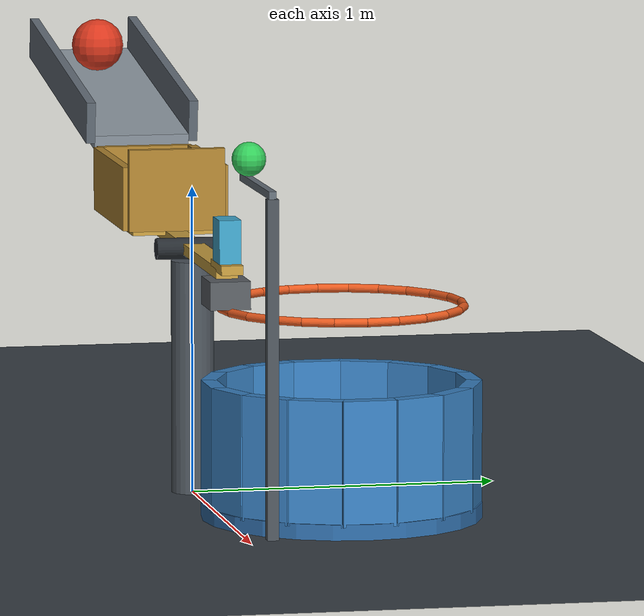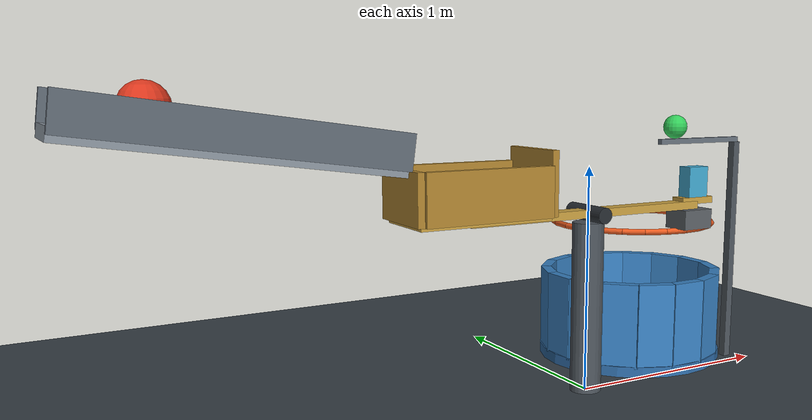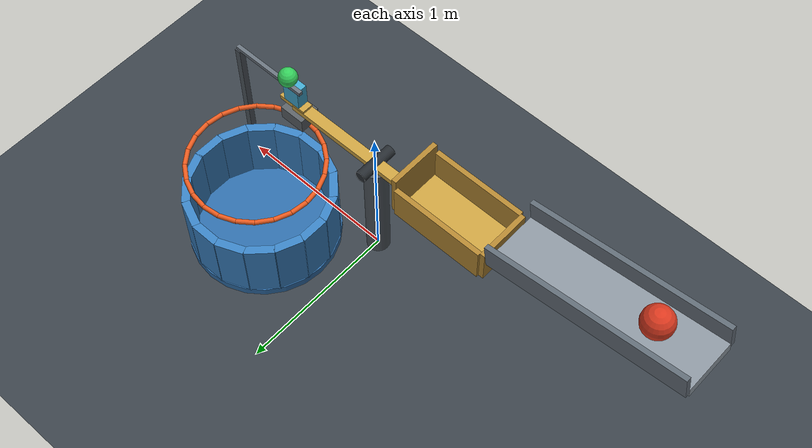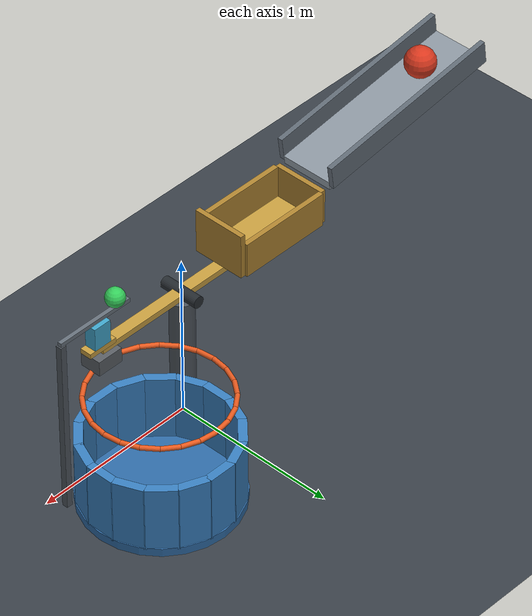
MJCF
<mujoco model="ramp_balance_hoop_cup">
  <compiler angle="degree" inertiafromgeom="true"/>
  <option timestep="0.002" gravity="0 0 -9.81" integrator="implicitfast" iterations="100"/>
  <size njmax="2000" nconmax="400"/>
  <visual>
    <headlight ambient="0.35 0.35 0.35" diffuse="0.75 0.75 0.75" specular="0.2 0.2 0.2"/>
  </visual>

  <worldbody>
    <light name="overhead" pos="-0.5 -2 4" dir="0.1 0.4 -1" diffuse="0.8 0.8 0.8"/>
    <camera name="overview" pos="-2.8 -4.3 2.8" xyaxes="0.87 -0.49 0 0.22 0.39 0.895"/>
    <geom name="floor" type="plane" pos="0 0 0" size="4 3 0.1" friction="1 0.01 0.001" rgba="0.22 0.25 0.28 1"/>

    <!-- The ramp slopes down in +x. Ball1 starts exactly 0.9 m along its surface from the exit. -->
    <body name="ramp" pos="-1.52416084 0 1.14350386" euler="0 8 0">
      <geom name="ramp_surface" type="box" pos="0 0 -0.025" size="0.6 0.16 0.025" friction="0.8 0.005 0.00005" solref="0.008 1" rgba="0.55 0.59 0.63 1"/>
      <geom name="ramp_rail_left" type="box" pos="0 0.175 0.045" size="0.6 0.015 0.07" friction="0.6 0.005 0.00005" rgba="0.38 0.42 0.46 1"/>
      <geom name="ramp_rail_right" type="box" pos="0 -0.175 0.045" size="0.6 0.015 0.07" friction="0.6 0.005 0.00005" rgba="0.38 0.42 0.46 1"/>
    </body>

    <body name="ball1" pos="-1.80871568 0 1.27437992">
      <freejoint name="ball1_free"/>
      <geom name="ball1_geom" type="sphere" size="0.09" mass="1.4" condim="6" friction="0.8 0.005 0.00005" solref="0.008 1" rgba="0.85 0.22 0.12 1"/>
    </body>

    <body name="balance_support" pos="0 0 0">
      <geom name="balance_support_post" type="cylinder" pos="0 0 0.38" size="0.07 0.38" contype="0" conaffinity="0" rgba="0.3 0.33 0.36 1"/>
      <geom name="balance_support_axle" type="cylinder" pos="0 0 0.8" euler="90 0 0" size="0.035 0.12" contype="0" conaffinity="0" rgba="0.15 0.17 0.19 1"/>
    </body>

    <!-- Positive hinge motion lowers the recessed left end and raises the striker end. -->
    <body name="balance" pos="0 0 0.8">
      <joint name="balance_hinge" type="hinge" axis="0 -1 0" limited="true" range="0 23" damping="2.8" armature="0.01" solreflimit="0.004 1"/>
      <geom name="balance_beam" type="box" pos="0 0 0" size="0.6 0.035 0.018" mass="0.14" friction="0.6 0.005 0.0001" solref="0.008 1" rgba="0.78 0.62 0.25 1"/>
      <geom name="balance_recess_floor" type="box" pos="-0.585 0 0.02" size="0.295 0.145 0.015" mass="0.10" friction="0.7 0.005 0.0001" solref="0.008 1" rgba="0.78 0.62 0.25 1"/>
      <geom name="balance_recess_entry" type="box" pos="-0.885 0 0.125" size="0.015 0.16 0.105" mass="0.025" friction="0.7 0.005 0.0001" solref="0.008 1" rgba="0.69 0.52 0.19 1"/>
      <geom name="balance_recess_back" type="box" pos="-0.285 0 0.155" size="0.015 0.16 0.135" mass="0.025" friction="0.7 0.005 0.0001" solref="0.008 1" rgba="0.69 0.52 0.19 1"/>
      <geom name="balance_recess_side_left" type="box" pos="-0.585 0.16 0.125" size="0.285 0.015 0.105" mass="0.025" friction="0.7 0.005 0.0001" solref="0.008 1" rgba="0.69 0.52 0.19 1"/>
      <geom name="balance_recess_side_right" type="box" pos="-0.585 -0.16 0.125" size="0.285 0.015 0.105" mass="0.025" friction="0.7 0.005 0.0001" solref="0.008 1" rgba="0.69 0.52 0.19 1"/>
      <geom name="balance_striker_pad" type="box" pos="0.6 0 0.02" size="0.09 0.035 0.015" mass="0.05" friction="0.5 0.005 0.0001" solref="0.008 1" rgba="0.78 0.62 0.25 1"/>
      <geom name="balance_counterweight" type="box" pos="0.58 0 -0.065" size="0.08 0.065 0.045" mass="0.15" friction="0.5 0.005 0.0001" rgba="0.35 0.37 0.39 1"/>
    </body>

    <body name="block" pos="0.6 0 0.905">
      <freejoint name="block_free"/>
      <geom name="block_geom" type="box" size="0.055 0.035 0.07" mass="0.07" condim="6" friction="0.5 0.005 0.0002" solref="0.008 1" rgba="0.25 0.65 0.8 1"/>
    </body>

    <!-- The narrow perch leaves the ball's inward underside exposed to the rising block. -->
    <body name="ball2_perch" pos="0 0 0">
      <geom name="ball2_perch_shelf" type="box" pos="0.7 0.08 1.088" size="0.24 0.012 0.012" friction="0.35 0.003 0.0001" solref="0.008 1" rgba="0.4 0.44 0.48 1"/>
      <geom name="ball2_perch_post" type="box" pos="0.93 0.08 0.538" size="0.018 0.018 0.538" friction="0.5 0.005 0.0001" rgba="0.3 0.33 0.36 1"/>
    </body>

    <body name="ball2" pos="0.55 0.08 1.155">
      <freejoint name="ball2_free"/>
      <geom name="ball2_geom" type="sphere" size="0.055" mass="0.06" condim="6" friction="0.9 0.015 0.01" solref="0.008 1" rgba="0.2 0.8 0.35 1"/>
    </body>

    <!-- A horizontal hoop built entirely from capsule segments. -->
    <body name="hoop" pos="0.55 0.38 0.68">
      <geom name="hoop_segment_00" type="capsule" fromto="0.39 0 0 0.376711 0.10094 0" size="0.014" friction="0.5 0.005 0.001" rgba="0.9 0.35 0.12 1"/>
      <geom name="hoop_segment_01" type="capsule" fromto="0.376711 0.10094 0 0.33775 0.195 0" size="0.014" friction="0.5 0.005 0.001" rgba="0.9 0.35 0.12 1"/>
      <geom name="hoop_segment_02" type="capsule" fromto="0.33775 0.195 0 0.275772 0.275772 0" size="0.014" friction="0.5 0.005 0.001" rgba="0.9 0.35 0.12 1"/>
      <geom name="hoop_segment_03" type="capsule" fromto="0.275772 0.275772 0 0.195 0.33775 0" size="0.014" friction="0.5 0.005 0.001" rgba="0.9 0.35 0.12 1"/>
      <geom name="hoop_segment_04" type="capsule" fromto="0.195 0.33775 0 0.10094 0.376711 0" size="0.014" friction="0.5 0.005 0.001" rgba="0.9 0.35 0.12 1"/>
      <geom name="hoop_segment_05" type="capsule" fromto="0.10094 0.376711 0 0 0.39 0" size="0.014" friction="0.5 0.005 0.001" rgba="0.9 0.35 0.12 1"/>
      <geom name="hoop_segment_06" type="capsule" fromto="0 0.39 0 -0.10094 0.376711 0" size="0.014" friction="0.5 0.005 0.001" rgba="0.9 0.35 0.12 1"/>
      <geom name="hoop_segment_07" type="capsule" fromto="-0.10094 0.376711 0 -0.195 0.33775 0" size="0.014" friction="0.5 0.005 0.001" rgba="0.9 0.35 0.12 1"/>
      <geom name="hoop_segment_08" type="capsule" fromto="-0.195 0.33775 0 -0.275772 0.275772 0" size="0.014" friction="0.5 0.005 0.001" rgba="0.9 0.35 0.12 1"/>
      <geom name="hoop_segment_09" type="capsule" fromto="-0.275772 0.275772 0 -0.33775 0.195 0" size="0.014" friction="0.5 0.005 0.001" rgba="0.9 0.35 0.12 1"/>
      <geom name="hoop_segment_10" type="capsule" fromto="-0.33775 0.195 0 -0.376711 0.10094 0" size="0.014" friction="0.5 0.005 0.001" rgba="0.9 0.35 0.12 1"/>
      <geom name="hoop_segment_11" type="capsule" fromto="-0.376711 0.10094 0 -0.39 0 0" size="0.014" friction="0.5 0.005 0.001" rgba="0.9 0.35 0.12 1"/>
      <geom name="hoop_segment_12" type="capsule" fromto="-0.39 0 0 -0.376711 -0.10094 0" size="0.014" friction="0.5 0.005 0.001" rgba="0.9 0.35 0.12 1"/>
      <geom name="hoop_segment_13" type="capsule" fromto="-0.376711 -0.10094 0 -0.33775 -0.195 0" size="0.014" friction="0.5 0.005 0.001" rgba="0.9 0.35 0.12 1"/>
      <geom name="hoop_segment_14" type="capsule" fromto="-0.33775 -0.195 0 -0.275772 -0.275772 0" size="0.014" friction="0.5 0.005 0.001" rgba="0.9 0.35 0.12 1"/>
      <geom name="hoop_segment_15" type="capsule" fromto="-0.275772 -0.275772 0 -0.195 -0.33775 0" size="0.014" friction="0.5 0.005 0.001" rgba="0.9 0.35 0.12 1"/>
      <geom name="hoop_segment_16" type="capsule" fromto="-0.195 -0.33775 0 -0.10094 -0.376711 0" size="0.014" friction="0.5 0.005 0.001" rgba="0.9 0.35 0.12 1"/>
      <geom name="hoop_segment_17" type="capsule" fromto="-0.10094 -0.376711 0 0 -0.39 0" size="0.014" friction="0.5 0.005 0.001" rgba="0.9 0.35 0.12 1"/>
      <geom name="hoop_segment_18" type="capsule" fromto="0 -0.39 0 0.10094 -0.376711 0" size="0.014" friction="0.5 0.005 0.001" rgba="0.9 0.35 0.12 1"/>
      <geom name="hoop_segment_19" type="capsule" fromto="0.10094 -0.376711 0 0.195 -0.33775 0" size="0.014" friction="0.5 0.005 0.001" rgba="0.9 0.35 0.12 1"/>
      <geom name="hoop_segment_20" type="capsule" fromto="0.195 -0.33775 0 0.275772 -0.275772 0" size="0.014" friction="0.5 0.005 0.001" rgba="0.9 0.35 0.12 1"/>
      <geom name="hoop_segment_21" type="capsule" fromto="0.275772 -0.275772 0 0.33775 -0.195 0" size="0.014" friction="0.5 0.005 0.001" rgba="0.9 0.35 0.12 1"/>
      <geom name="hoop_segment_22" type="capsule" fromto="0.33775 -0.195 0 0.376711 -0.10094 0" size="0.014" friction="0.5 0.005 0.001" rgba="0.9 0.35 0.12 1"/>
      <geom name="hoop_segment_23" type="capsule" fromto="0.376711 -0.10094 0 0.39 0 0" size="0.014" friction="0.5 0.005 0.001" rgba="0.9 0.35 0.12 1"/>
    </body>

    <body name="cup" pos="0.55 0.38 0">
      <geom name="cup_bottom" type="cylinder" pos="0 0 0.025" size="0.45 0.025" condim="6" friction="1 0.02 0.01" solref="0.008 1" rgba="0.18 0.42 0.65 1"/>
      <geom name="cup_wall_00" type="box" pos="0.415 0 0.24" euler="0 0 0" size="0.025 0.085 0.2" condim="6" friction="1 0.02 0.01" solref="0.008 1" rgba="0.22 0.5 0.75 1"/>
      <geom name="cup_wall_01" type="box" pos="0.38341 0.158813 0.24" euler="0 0 22.5" size="0.025 0.085 0.2" condim="6" friction="1 0.02 0.01" solref="0.008 1" rgba="0.22 0.5 0.75 1"/>
      <geom name="cup_wall_02" type="box" pos="0.293449 0.293449 0.24" euler="0 0 45" size="0.025 0.085 0.2" condim="6" friction="1 0.02 0.01" solref="0.008 1" rgba="0.22 0.5 0.75 1"/>
      <geom name="cup_wall_03" type="box" pos="0.158813 0.38341 0.24" euler="0 0 67.5" size="0.025 0.085 0.2" condim="6" friction="1 0.02 0.01" solref="0.008 1" rgba="0.22 0.5 0.75 1"/>
      <geom name="cup_wall_04" type="box" pos="0 0.415 0.24" euler="0 0 90" size="0.025 0.085 0.2" condim="6" friction="1 0.02 0.01" solref="0.008 1" rgba="0.22 0.5 0.75 1"/>
      <geom name="cup_wall_05" type="box" pos="-0.158813 0.38341 0.24" euler="0 0 112.5" size="0.025 0.085 0.2" condim="6" friction="1 0.02 0.01" solref="0.008 1" rgba="0.22 0.5 0.75 1"/>
      <geom name="cup_wall_06" type="box" pos="-0.293449 0.293449 0.24" euler="0 0 135" size="0.025 0.085 0.2" condim="6" friction="1 0.02 0.01" solref="0.008 1" rgba="0.22 0.5 0.75 1"/>
      <geom name="cup_wall_07" type="box" pos="-0.38341 0.158813 0.24" euler="0 0 157.5" size="0.025 0.085 0.2" condim="6" friction="1 0.02 0.01" solref="0.008 1" rgba="0.22 0.5 0.75 1"/>
      <geom name="cup_wall_08" type="box" pos="-0.415 0 0.24" euler="0 0 180" size="0.025 0.085 0.2" condim="6" friction="1 0.02 0.01" solref="0.008 1" rgba="0.22 0.5 0.75 1"/>
      <geom name="cup_wall_09" type="box" pos="-0.38341 -0.158813 0.24" euler="0 0 202.5" size="0.025 0.085 0.2" condim="6" friction="1 0.02 0.01" solref="0.008 1" rgba="0.22 0.5 0.75 1"/>
      <geom name="cup_wall_10" type="box" pos="-0.293449 -0.293449 0.24" euler="0 0 225" size="0.025 0.085 0.2" condim="6" friction="1 0.02 0.01" solref="0.008 1" rgba="0.22 0.5 0.75 1"/>
      <geom name="cup_wall_11" type="box" pos="-0.158813 -0.38341 0.24" euler="0 0 247.5" size="0.025 0.085 0.2" condim="6" friction="1 0.02 0.01" solref="0.008 1" rgba="0.22 0.5 0.75 1"/>
      <geom name="cup_wall_12" type="box" pos="0 -0.415 0.24" euler="0 0 270" size="0.025 0.085 0.2" condim="6" friction="1 0.02 0.01" solref="0.008 1" rgba="0.22 0.5 0.75 1"/>
      <geom name="cup_wall_13" type="box" pos="0.158813 -0.38341 0.24" euler="0 0 292.5" size="0.025 0.085 0.2" condim="6" friction="1 0.02 0.01" solref="0.008 1" rgba="0.22 0.5 0.75 1"/>
      <geom name="cup_wall_14" type="box" pos="0.293449 -0.293449 0.24" euler="0 0 315" size="0.025 0.085 0.2" condim="6" friction="1 0.02 0.01" solref="0.008 1" rgba="0.22 0.5 0.75 1"/>
      <geom name="cup_wall_15" type="box" pos="0.38341 -0.158813 0.24" euler="0 0 337.5" size="0.025 0.085 0.2" condim="6" friction="1 0.02 0.01" solref="0.008 1" rgba="0.22 0.5 0.75 1"/>
    </body>
  </worldbody>

  <keyframe>
    <key name="start"/>
  </keyframe>
</mujoco>
